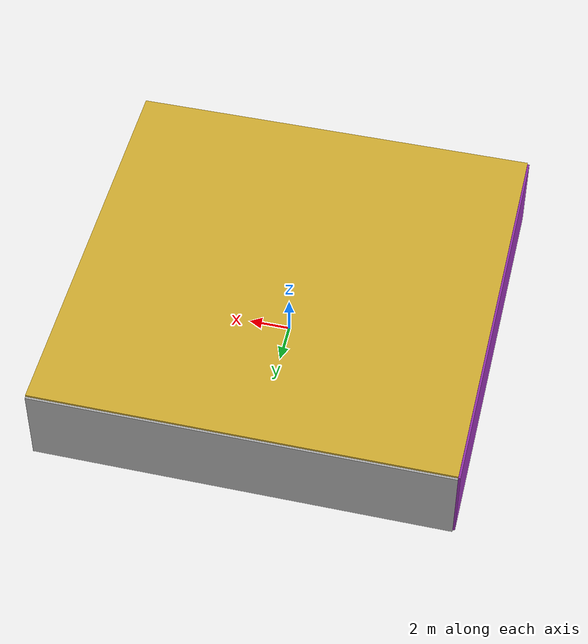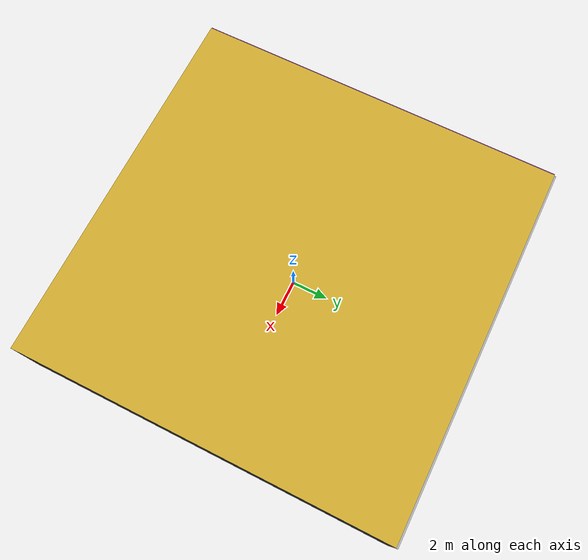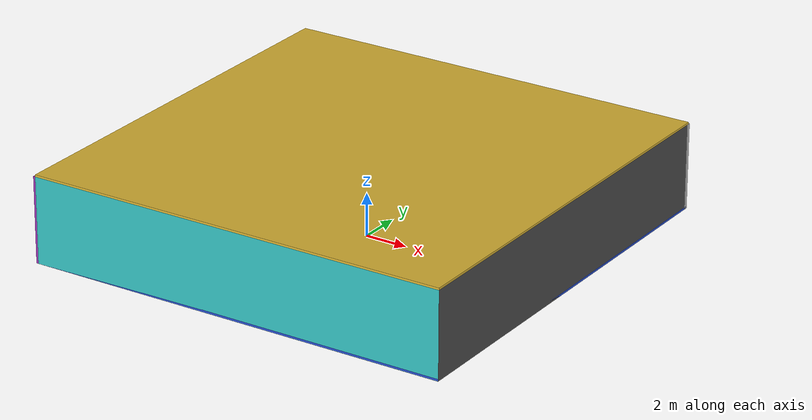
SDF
<sdf version="1.4">
 <world name="default">
  <physics type="ode">
   <max_step_size>0.001</max_step_size>
   <real_time_factor>1</real_time_factor>
   <real_time_update_rate>1000</real_time_update_rate>
   <gravity>0 0 -9.8</gravity>
  </physics>
  <scene><ambient>0.4 0.4 0.4 1</ambient><background>0.7 0.7 0.7 1</background><shadows>1</shadows></scene>
  <model name="Surrounding">
   <static>1</static>
   <link name="Ceiling">
    <collision name="Ceiling_Collision"><geometry><box><size>20 20 0.1</size></box></geometry></collision>
    <visual name="Ceiling_Visual">
     <geometry><box><size>20 20 0.1</size></box></geometry>
     <material>
      <script><uri>file://media/materials/scripts/gazebo.material</uri><name>Gazebo/Gold</name></script>
     </material>
    </visual>
    <pose>0 0 4.05 0 0 0</pose>
   </link>
   <link name="Wall_South">
    <collision name="Wall_South_Collision">
     <geometry><box><size>20 0 4</size></box></geometry>
     <pose>0 0 2 0 -0 0</pose>
    </collision>
    <visual name="Wall_South_Visual">
     <pose>0 0 2 0 -0 0</pose>
     <geometry><box><size>20 0 4</size></box></geometry>
     <material>
      <script><uri>file://media/materials/scripts/gazebo.material</uri><name>Gazebo/Turquoise</name></script>
     </material>
    </visual>
    <velocity_decay><linear>0</linear><angular>0</angular></velocity_decay>
    <pose>0 -10 0 0 -0 0</pose>
   </link>
   <link name="Wall_East">
    <collision name="Wall_21_Collision">
     <geometry><box><size>20 0 4</size></box></geometry>
     <pose>0 0 2 0 -0 0</pose>
    </collision>
    <visual name="Wall_21_Visual">
     <pose>0 0 2 0 -0 0</pose>
     <geometry><box><size>20 0 4</size></box></geometry>
     <material>
      <script><uri>file://media/materials/scripts/gazebo.material</uri><name>Gazebo/DarkGrey</name></script>
     </material>
    </visual>
    <velocity_decay><linear>0</linear><angular>0</angular></velocity_decay>
    <pose>10 0 0 0 -0 1.5708</pose>
   </link>
   <link name="Wall_North">
    <collision name="Wall_22_Collision">
     <geometry><box><size>20 0.2 4</size></box></geometry>
     <pose>0 0 2 0 -0 0</pose>
    </collision>
    <visual name="Wall_22_Visual">
     <pose>0 0 2 0 -0 0</pose>
     <geometry><box><size>20 0.2 4</size></box></geometry>
     <material>
      <script><uri>file://media/materials/scripts/gazebo.material</uri><name>Gazebo/LightOff</name></script>
     </material>
    </visual>
    <velocity_decay><linear>0</linear><angular>0</angular></velocity_decay>
    <pose>0 10 0 0 -0 0</pose>
   </link>
   <link name="Wall_West">
    <collision name="Wall_23_Collision">
     <geometry><box><size>20 0.2 4</size></box></geometry>
     <pose>0 0 2 0 -0 0</pose>
    </collision>
    <visual name="Wall_23_Visual">
     <pose>0 0 2 0 -0 0</pose>
     <geometry><box><size>20 0.2 4</size></box></geometry>
     <material>
      <script><uri>file://media/materials/scripts/gazebo.material</uri><name>Gazebo/Purple</name></script>
     </material>
    </visual>
    <velocity_decay><linear>0</linear><angular>0</angular></velocity_decay>
    <pose>-10 0 0 0 0 -1.5708</pose>
   </link>
   <link name="Ground_link">
    <collision name="collision">
     <pose>0 0 .05 0 -0 0</pose>
     <geometry><box><size>20 20 0.1</size></box></geometry>
    </collision>
    <visual name="visual">
     <pose>0 0 .05 0 -0 0</pose>
     <geometry><box><size>20 20 0.1</size></box></geometry>
     <material>
      <script><uri>file://media/materials/scripts/gazebo.material</uri><name>Gazebo/Blue</name></script>
     </material>
    </visual>
   </link>
   <static>1</static>
  </model>
  <spherical_coordinates>
   <surface_model>EARTH_WGS84</surface_model>
   <latitude_deg>0</latitude_deg>
   <longitude_deg>0</longitude_deg>
   <elevation>0</elevation>
   <heading_deg>0</heading_deg>
  </spherical_coordinates>
  <light name="lightball_0" type="diffuse">
   <diffuse>0.8 0.8 0.8 1</diffuse>
   <specular>0.2 0.2 0.2 1</specular>
   <attenuation>
    <range>100</range>
    <constant>0.7</constant>
    <linear>0.01</linear>
    <quadratic>0.001</quadratic>
   </attenuation>
   <direction>-0.5 0.1 -0.9</direction>
   <pose>9.2569928153 7.16923810718 2.63903845848 0 0 0</pose>
  </light>
  <light name="lightball_1" type="diffuse">
   <diffuse>0.8 0.8 0.8 1</diffuse>
   <specular>0.2 0.2 0.2 1</specular>
   <attenuation>
    <range>100</range>
    <constant>0.7</constant>
    <linear>0.01</linear>
    <quadratic>0.001</quadratic>
   </attenuation>
   <direction>-0.5 0.1 -0.9</direction>
   <pose>3.14163014249 6.85182301135 1.46911171978 0 0 0</pose>
  </light>
  <light name="lightball_2" type="diffuse">
   <diffuse>0.8 0.8 0.8 1</diffuse>
   <specular>0.2 0.2 0.2 1</specular>
   <attenuation>
    <range>100</range>
    <constant>0.7</constant>
    <linear>0.01</linear>
    <quadratic>0.001</quadratic>
   </attenuation>
   <direction>-0.5 0.1 -0.9</direction>
   <pose>-1.85687715616 -8.13459471211 3.50471300558 0 0 0</pose>
  </light>
  <light name="lightball_3" type="diffuse">
   <diffuse>0.8 0.8 0.8 1</diffuse>
   <specular>0.2 0.2 0.2 1</specular>
   <attenuation>
    <range>100</range>
    <constant>0.7</constant>
    <linear>0.01</linear>
    <quadratic>0.001</quadratic>
   </attenuation>
   <direction>-0.5 0.1 -0.9</direction>
   <pose>-7.13623366072 -5.98623156559 1.66006880579 0 0 0</pose>
  </light>
  <light name="lightball_4" type="diffuse">
   <diffuse>0.8 0.8 0.8 1</diffuse>
   <specular>0.2 0.2 0.2 1</specular>
   <attenuation>
    <range>100</range>
    <constant>0.7</constant>
    <linear>0.01</linear>
    <quadratic>0.001</quadratic>
   </attenuation>
   <direction>-0.5 0.1 -0.9</direction>
   <pose>-4.60682481881 5.30743794979 0.851660918387 0 0 0</pose>
  </light>
  <light name="lightball_5" type="diffuse">
   <diffuse>0.8 0.8 0.8 1</diffuse>
   <specular>0.2 0.2 0.2 1</specular>
   <attenuation>
    <range>100</range>
    <constant>0.7</constant>
    <linear>0.01</linear>
    <quadratic>0.001</quadratic>
   </attenuation>
   <direction>-0.5 0.1 -0.9</direction>
   <pose>3.71639495274 -5.9971624018 3.06595441452 0 0 0</pose>
  </light>
  <light name="lightball_6" type="diffuse">
   <diffuse>0.8 0.8 0.8 1</diffuse>
   <specular>0.2 0.2 0.2 1</specular>
   <attenuation>
    <range>100</range>
    <constant>0.7</constant>
    <linear>0.01</linear>
    <quadratic>0.001</quadratic>
   </attenuation>
   <direction>-0.5 0.1 -0.9</direction>
   <pose>4.79052050075 5.52376400348 3.24562712666 0 0 0</pose>
  </light>
  <light name="lightball_7" type="diffuse">
   <diffuse>0.8 0.8 0.8 1</diffuse>
   <specular>0.2 0.2 0.2 1</specular>
   <attenuation>
    <range>100</range>
    <constant>0.7</constant>
    <linear>0.01</linear>
    <quadratic>0.001</quadratic>
   </attenuation>
   <direction>-0.5 0.1 -0.9</direction>
   <pose>8.94131094479 -1.44245521707 3.76899607383 0 0 0</pose>
  </light>
  <light name="lightball_8" type="diffuse">
   <diffuse>0.8 0.8 0.8 1</diffuse>
   <specular>0.2 0.2 0.2 1</specular>
   <attenuation>
    <range>100</range>
    <constant>0.7</constant>
    <linear>0.01</linear>
    <quadratic>0.001</quadratic>
   </attenuation>
   <direction>-0.5 0.1 -0.9</direction>
   <pose>0.951528999229 -7.19210733381 0.873369375771 0 0 0</pose>
  </light>
  <light name="lightball_9" type="diffuse">
   <diffuse>0.8 0.8 0.8 1</diffuse>
   <specular>0.2 0.2 0.2 1</specular>
   <attenuation>
    <range>100</range>
    <constant>0.7</constant>
    <linear>0.01</linear>
    <quadratic>0.001</quadratic>
   </attenuation>
   <direction>-0.5 0.1 -0.9</direction>
   <pose>4.42075461293 -7.90925064378 3.47078659992 0 0 0</pose>
  </light>
  <include>
   <uri>model://textured_shapes</uri>
   <pose>-3.63842592264 1.85124530899 0 0 0 0.437635420061</pose>
  </include>
  <include>
   <uri>model://textured_shapes</uri>
   <pose>2.26942809447 -5.21098622712 0 0 0 0.774405738507</pose>
  </include>
  <include>
   <uri>model://construction_cone</uri>
   <pose>5.09920282657 -8.0135234272 0 0 0 1.45627975556</pose>
  </include>
  <include>
   <uri>model://robocup_3Dsim_goal</uri>
   <pose>6.31126002459 -2.13753541843 0 0 0 2.80023668495</pose>
  </include>
 </world>
</sdf>

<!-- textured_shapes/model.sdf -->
<sdf version="1.6">
  <model name="textured_shapes">
    <pose>0 0 0.5 0 0 0</pose>
    <link name="box">
      <pose>0 -1.5 0 0 0 0</pose>
      <collision name="collision">
        <geometry>
          <box>
            <size>1 1 1</size>
          </box>
        </geometry>
      </collision>
      <visual name="visual">
        <geometry>
          <box>
            <size>1 1 1</size>
          </box>
        </geometry>
        <material>
          <script>
            <uri>model://../model_source/models/textured_shapes/materials/scripts</uri>
            <uri>model://../model_source/models/textured_shapes/materials/textures</uri>
            <name>TexturedShape/Squares</name>
          </script>
        </material>
      </visual>
    </link>
    <link name="sphere">
      <collision name="collision">
        <geometry>
          <sphere>
            <radius>0.5</radius>
          </sphere>
        </geometry>
      </collision>
      <visual name="visual">
        <geometry>
          <sphere>
            <radius>0.5</radius>
          </sphere>
        </geometry>
        <material>
          <script>
            <uri>model://../model_source/models/textured_shapes/materials/scripts</uri>
            <uri>model://../model_source/models/textured_shapes/materials/textures</uri>
            <name>TexturedShape/Squares</name>
          </script>
        </material>
      </visual>
    </link>
    <link name="cylinder">
      <pose>0 1.5 0 0 0 0</pose>
      <collision name="collision">
        <geometry>
          <cylinder>
            <radius>0.5</radius>
            <length>1</length>
          </cylinder>
        </geometry>
      </collision>
      <visual name="visual">
        <geometry>
          <cylinder>
            <radius>0.5</radius>
            <length>1</length>
          </cylinder>
        </geometry>
        <material>
          <script>
            <uri>model://../model_source/models/textured_shapes/materials/scripts</uri>
            <uri>model://../model_source/models/textured_shapes/materials/textures</uri>
            <name>TexturedShape/Squares</name>
          </script>
        </material>
      </visual>
    </link>
  </model>
</sdf>

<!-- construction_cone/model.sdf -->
<sdf version="1.5">
  <model name="Construction Cone">
    <link name="link">
      <collision name="collision">
        <geometry>
          <mesh>
            <scale>10 10 10</scale>
            <uri>file://isr-testbed/construction_cone/meshes/construction_cone.dae</uri>
          </mesh>
        </geometry>
      </collision>
      <visual name="visual">
        <geometry>
          <mesh>
            <scale>10 10 10</scale>
            <uri>file://isr-testbed/construction_cone/meshes/construction_cone.dae</uri>
          </mesh>
        </geometry>
      </visual>
    </link>
  </model>
</sdf>

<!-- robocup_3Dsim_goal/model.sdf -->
<sdf version="1.5">
  <model name="robocup_3d_goal">
    <static>true</static>
    <link name="left_post">
      <pose>0 1.05 0.45 0 0 0</pose>
      <collision name="collision">
        <geometry>
          <cylinder>
            <radius>0.05</radius>
            <length>0.9</length>
          </cylinder>
        </geometry>
      </collision>
      <visual name="visual">
        <geometry>
          <cylinder>
            <radius>0.05</radius>
            <length>0.9</length>
          </cylinder>
        </geometry>
        <material>
          <script>
            <uri>file://media/materials/scripts/gazebo.material</uri>
            <name>Gazebo/ZincYellow</name>
          </script>
        </material>
      </visual>
    </link>
    <link name="left_support_horiz_lower">
      <pose>0.30 1.05 0.01 0 0 0</pose>
      <collision name="collision">
        <geometry>
          <box>
            <size>0.50 0.02 0.02</size>
          </box>
        </geometry>
      </collision>
      <visual name="visual">
        <geometry>
          <box>
            <size>0.50 0.02 0.02</size>
          </box>
        </geometry>
        <material>
          <script>
            <uri>file://media/materials/scripts/gazebo.material</uri>
            <name>Gazebo/White</name>
          </script>
        </material>
      </visual>
    </link>
    <link name="left_support_horiz_upper">
      <pose>0.30 1.05 0.79 0 0 0</pose>
      <collision name="collision">
        <geometry>
          <box>
            <size>0.50 0.02 0.02</size>
          </box>
        </geometry>
      </collision>
      <visual name="visual">
        <geometry>
          <box>
            <size>0.50 0.02 0.02</size>
          </box>
        </geometry>
        <material>
          <script>
            <uri>file://media/materials/scripts/gazebo.material</uri>
            <name>Gazebo/White</name>
          </script>
        </material>
      </visual>
    </link>
    <link name="left_support_vertical">
      <pose>0.56 1.05 0.4 0 1.5708 0</pose>
      <collision name="collision">
        <geometry>
          <box>
            <size>0.80 0.02 0.02</size>
          </box>
        </geometry>
      </collision>
      <visual name="visual">
        <geometry>
          <box>
            <size>0.80 0.02 0.02</size>
          </box>
        </geometry>
        <material>
          <script>
            <uri>file://media/materials/scripts/gazebo.material</uri>
            <name>Gazebo/White</name>
          </script>
        </material>
      </visual>
    </link>
    <link name="right_support_horiz_lower">
      <pose>0.30 -1.05 0.01 0 0 0</pose>
      <collision name="collision">
        <geometry>
          <box>
            <size>0.50 0.02 0.02</size>
          </box>
        </geometry>
      </collision>
      <visual name="visual">
        <geometry>
          <box>
            <size>0.50 0.02 0.02</size>
          </box>
        </geometry>
        <material>
          <script>
            <uri>file://media/materials/scripts/gazebo.material</uri>
            <name>Gazebo/White</name>
          </script>
        </material>
      </visual>
    </link>
    <link name="right_support_horiz_upper">
      <pose>0.30 -1.05 0.79 0 0 0</pose>
      <collision name="collision">
        <geometry>
          <box>
            <size>0.50 0.02 0.02</size>
          </box>
        </geometry>
      </collision>
      <visual name="visual">
        <geometry>
          <box>
            <size>0.50 0.02 0.02</size>
          </box>
        </geometry>
        <material>
          <script>
            <uri>file://media/materials/scripts/gazebo.material</uri>
            <name>Gazebo/White</name>
          </script>
        </material>
      </visual>
    </link>
    <link name="right_support_vertical">
      <pose>0.56 -1.05 0.4 0 1.5708 0</pose>
      <collision name="collision">
        <geometry>
          <box>
            <size>0.80 0.02 0.02</size>
          </box>
        </geometry>
      </collision>
      <visual name="visual">
        <geometry>
          <box>
            <size>0.80 0.02 0.02</size>
          </box>
        </geometry>
        <material>
          <script>
            <uri>file://media/materials/scripts/gazebo.material</uri>
            <name>Gazebo/White</name>
          </script>
        </material>
      </visual>
    </link>
    <link name="center_support_horiz_lower">
      <pose>0.56 0 0.01 0 1.5708 0</pose>
      <collision name="collision">
        <geometry>
          <box>
            <size>0.02 2.08 0.02</size>
          </box>
        </geometry>
      </collision>
      <visual name="visual">
        <geometry>
          <box>
            <size>0.02 2.08 0.02</size>
          </box>
        </geometry>
        <material>
          <script>
            <uri>file://media/materials/scripts/gazebo.material</uri>
            <name>Gazebo/White</name>
          </script>
        </material>
      </visual>
    </link>
    <link name="center_support_horiz_upper">
      <pose>0.56 0 0.79 0 1.5708 0</pose>
      <collision name="collision">
        <geometry>
          <box>
            <size>0.02 2.08 0.02</size>
          </box>
        </geometry>
      </collision>
      <visual name="visual">
        <geometry>
          <box>
            <size>0.02 2.08 0.02</size>
          </box>
        </geometry>
        <material>
          <script>
            <uri>file://media/materials/scripts/gazebo.material</uri>
            <name>Gazebo/White</name>
          </script>
        </material>
      </visual>
    </link>
    <link name="right_post">
      <pose>0 -1.05 0.45 0 0 0</pose>
      <collision name="collision">
        <geometry>
          <cylinder>
            <radius>0.05</radius>
            <length>0.9</length>
          </cylinder>
        </geometry>
      </collision>
      <visual name="visual">
        <geometry>
          <cylinder>
            <radius>0.05</radius>
            <length>0.9</length>
          </cylinder>
        </geometry>
        <material>
          <script>
            <uri>file://media/materials/scripts/gazebo.material</uri>
            <name>Gazebo/ZincYellow</name>
          </script>
        </material>
      </visual>
    </link>
    <link name="crossbar">
      <pose>0 0 0.85 1.57 1.57 0</pose>
      <collision name="collision">
        <geometry>
          <cylinder>
            <radius>0.05</radius>
            <length>2.0</length>
          </cylinder>
        </geometry>
      </collision>
      <visual name="visual">
        <geometry>
          <cylinder>
            <radius>0.05</radius>
            <length>2.0</length>
          </cylinder>
        </geometry>
        <material>
          <script>
            <uri>file://media/materials/scripts/gazebo.material</uri>
            <name>Gazebo/ZincYellow</name>
          </script>
        </material>
      </visual>
    </link>
    <link name="center_net">
      <pose>0.56 0 0.40 0 0 0</pose>
      <collision name="collision">
        <geometry>
          <box>
            <size>0.01 2.1 0.80</size>
          </box>
        </geometry>
      </collision>
      <visual name="visual">
        <geometry>
          <box>
            <size>0.01 2.1 0.80</size>
          </box>
        </geometry>
        <material>
          <script>
            <uri>model://../model_source/models/robocup09_spl_field/materials/scripts/</uri>
            <uri>model://../model_source/models/robocup09_spl_field/materials/textures/</uri>
            <name>RoboCup/Net</name>
          </script>
        </material>
      </visual>
    </link>
    <link name="left_net">
      <pose>0.30 1.05 0.40 0 0 0</pose>
      <collision name="collision">
        <geometry>
          <box>
            <size>0.50 0.01 0.76</size>
          </box>
        </geometry>
      </collision>
      <visual name="visual">
        <geometry>
          <box>
            <size>0.50 0.01 0.76</size>
          </box>
        </geometry>
        <material>
          <script>
            <uri>model://../model_source/models/robocup09_spl_field/materials/scripts/</uri>
            <uri>model://../model_source/models/robocup09_spl_field/materials/textures/</uri>
            <name>RoboCup/Net</name>
          </script>
        </material>
      </visual>
    </link>
    <link name="right_net">
      <pose>0.30 -1.05 0.40 0 0 0</pose>
      <collision name="collision">
        <geometry>
          <box>
            <size>0.50 0.01 0.76</size>
          </box>
        </geometry>
      </collision>
      <visual name="visual">
        <geometry>
          <box>
            <size>0.50 0.01 0.76</size>
          </box>
        </geometry>
        <material>
          <script>
            <uri>model://../model_source/models/robocup09_spl_field/materials/scripts/</uri>
            <uri>model://../model_source/models/robocup09_spl_field/materials/textures/</uri>
            <name>RoboCup/Net</name>
          </script>
        </material>
      </visual>
    </link>
  </model>
</sdf>
